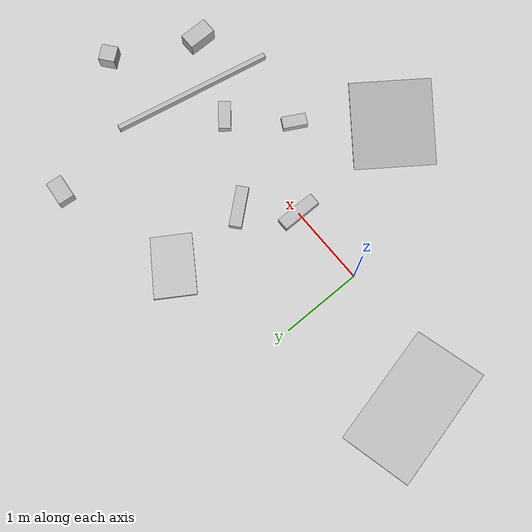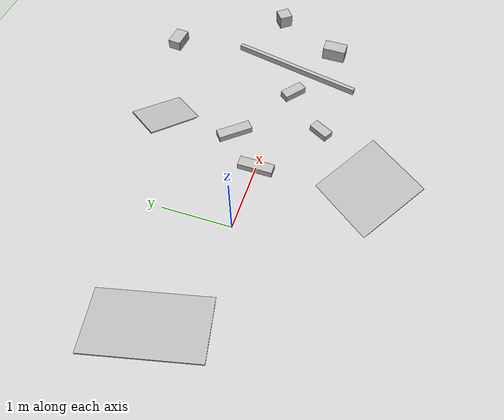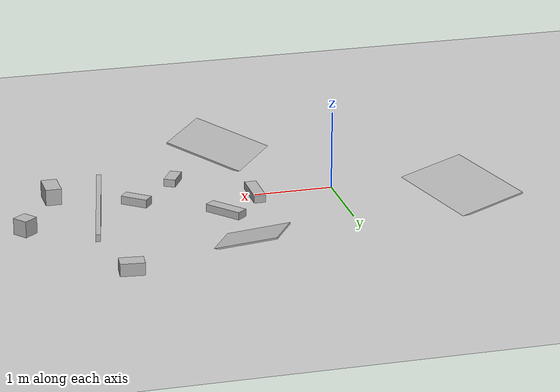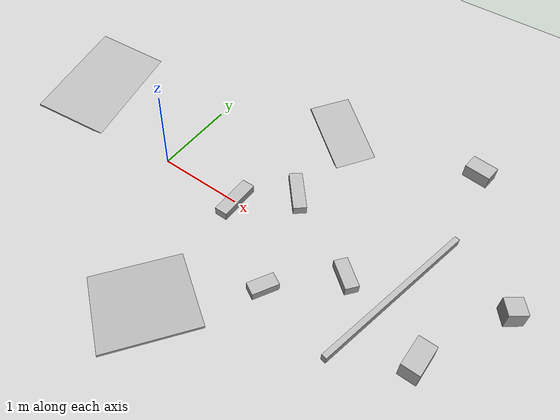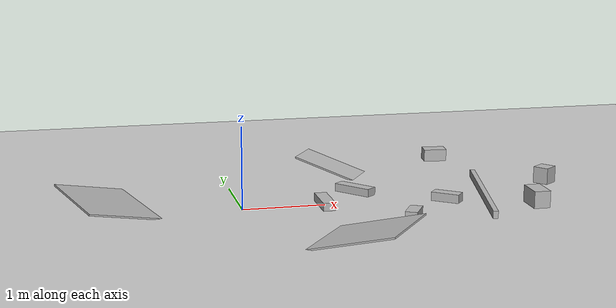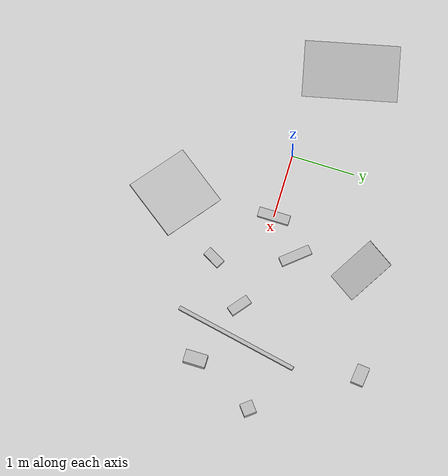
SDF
<?xml version="1.0" ?>
<sdf version="1.4">
  <world name="default">
    <include>
      <uri>model://ground_plane</uri>
    </include>
    <include>
      <uri>model://sun</uri>
    </include>
    <include>
      <uri>model://gazebo_worlds/models/stepping_stones</uri>
    </include>
    <physics type="ode">
      <gravity>0 0 -9.81</gravity>
    </physics>
  </world>
</sdf>

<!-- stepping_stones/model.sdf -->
<sdf version="1.4">

  <model name="stepping_stones">
    <static>true</static>

    <link name='box_small_1'>
      <pose>1.0 0 0.0 0 0 0</pose>
      <collision name='collision'>
        <geometry>
          <box>
            <size>0.15 0.5 0.18</size>
          </box>
        </geometry>
      </collision>
      <visual name='visual'>
        <geometry>
          <box>
            <size>0.15 0.5 0.18</size>
          </box>
        </geometry>
      </visual>
    </link>

    <link name='box_small_2'>
      <pose>1.5 0.5 0.0 0 0 0.7</pose>
      <collision name='collision'>
        <geometry>
          <box>
            <size>0.15 0.5 0.18</size>
          </box>
        </geometry>
      </collision>
      <visual name='visual'>
        <geometry>
          <box>
            <size>0.15 0.5 0.18</size>
          </box>
        </geometry>
      </visual>
    </link>

    <link name='box_small_3'>
      <pose>1.9 -0.7 0.0 0 0 -0.5</pose>
      <collision name='collision'>
        <geometry>
          <box>
            <size>0.15 0.3 0.18</size>
          </box>
        </geometry>
      </collision>
      <visual name='visual'>
        <geometry>
          <box>
            <size>0.15 0.3 0.18</size>
          </box>
        </geometry>
      </visual>
    </link>

    <link name='box_small_4'>
      <pose>2.5 -0.1 0.0 0 0 0.9</pose>
      <collision name='collision'>
        <geometry>
          <box>
            <size>0.15 0.35 0.2</size>
          </box>
        </geometry>
      </collision>
      <visual name='visual'>
        <geometry>
          <box>
            <size>0.15 0.35 0.2</size>
          </box>
        </geometry>
      </visual>
    </link>

    <link name='rail'>
      <pose>3.0 0.0 0.0 0.0 0.0 -0.2</pose>
      <collision name='collision'>
        <geometry>
          <box>
            <size>0.06 1.0 0.17</size>
          </box>
        </geometry>
      </collision>
      <visual name='visual'>
        <geometry>
          <box>
            <size>0.06 2.0 0.17</size>
          </box>
        </geometry>
      </visual>
    </link>

    <link name='ramp_small'>
      <pose>1.5 1.5 0.08 0.3 0.0 1.0</pose>
      <collision name='collision'>
        <geometry>
          <box>
            <size>0.5 1.0 0.02</size>
          </box>
        </geometry>
      </collision>
      <visual name='visual'>
        <geometry>
          <box>
            <size>0.5 1.0 0.02</size>
          </box>
        </geometry>
      </visual>
    </link>

    <link name='ramp_large'>
      <pose>1.0 -1.5 0.08 0.25 0.0 -2.2</pose>
      <collision name='collision'>
        <geometry>
          <box>
            <size>1.0 1.3 0.02</size>
          </box>
        </geometry>
      </collision>
      <visual name='visual'>
        <geometry>
          <box>
            <size>1.0 1.3 0.02</size>
          </box>
        </geometry>
      </visual>
    </link>

    <link name='ramp_intermediate'>
      <pose>-1.5 0.5 0.05 0.18 0.0 1.8</pose>
      <collision name='collision'>
        <geometry>
          <box>
            <size>1.5 1.0 0.02</size>
          </box>
        </geometry>
      </collision>
      <visual name='visual'>
        <geometry>
          <box>
            <size>1.5 1.0 0.02</size>
          </box>
        </geometry>
      </visual>
    </link>

    <link name='box_large_1'>
      <pose>4.0 0.5 0.0 0.0 0.0 -0.9</pose>
      <collision name='collision'>
        <geometry>
          <box>
            <size>0.2 0.2 0.4</size>
          </box>
        </geometry>
      </collision>
      <visual name='visual'>
        <geometry>
          <box>
            <size>0.2 0.2 0.4</size>
          </box>
        </geometry>
      </visual>
    </link>

    <link name='box_large_2'>
      <pose>3.5 -0.5 0.0 0.0 0.0 -0.0</pose>
      <collision name='collision'>
        <geometry>
          <box>
            <size>0.2 0.35 0.4</size>
          </box>
        </geometry>
      </collision>
      <visual name='visual'>
        <geometry>
          <box>
            <size>0.2 0.35 0.4</size>
          </box>
        </geometry>
      </visual>
    </link>

    <link name='box_large_3'>
      <pose>3.0 2.0 0.0 0.0 0.0 -0.1</pose>
      <collision name='collision'>
        <geometry>
          <box>
            <size>0.3 0.2 0.3</size>
          </box>
        </geometry>
      </collision>
      <visual name='visual'>
        <geometry>
          <box>
            <size>0.3 0.2 0.3</size>
          </box>
        </geometry>
      </visual>
    </link>

  </model>
</sdf>
